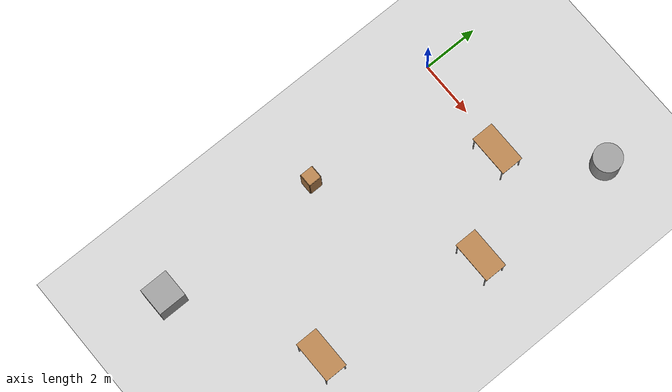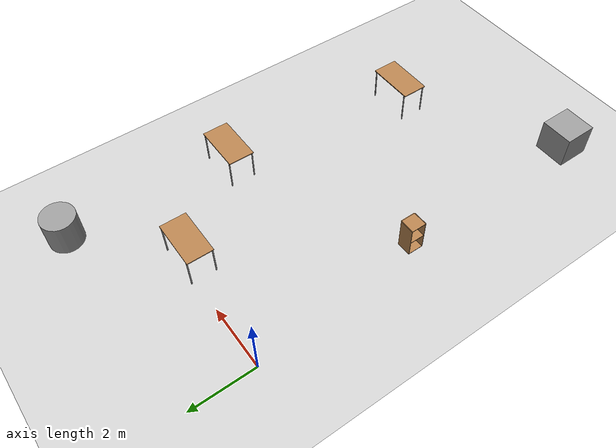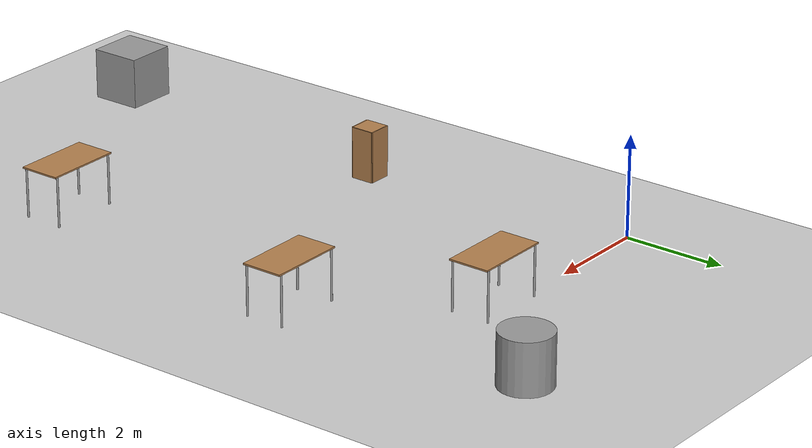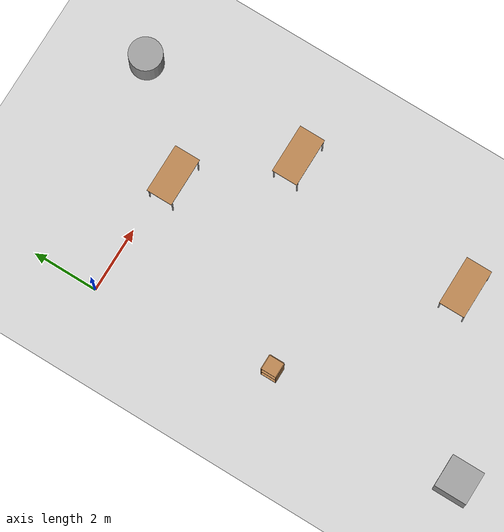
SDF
<sdf version="1.6">
 <world name="default">
  <physics name="default_physics" default="0" type="ode">
   <ode>
    <solver>
     <type>quick</type>
     <iters>100</iters>
     <sor>1</sor>
     <use_dynamic_moi_rescaling>0</use_dynamic_moi_rescaling>
    </solver>
    <constraints>
     <cfm>0</cfm>
     <erp>0.9</erp>
     <contact_max_correcting_vel>0.1</contact_max_correcting_vel>
     <contact_surface_layer>0</contact_surface_layer>
    </constraints>
   </ode>
   <real_time_update_rate>-1</real_time_update_rate>
   <max_step_size>0.001</max_step_size>
   <real_time_factor>1</real_time_factor>
  </physics>
  <light name="sun" type="directional">
   <pose>0 0 10 0 -0 0</pose>
   <diffuse>0.8 0.8 0.8 1</diffuse>
   <specular>0.2 0.2 0.2 1</specular>
   <attenuation>
    <range>1000</range>
    <constant>0.9</constant>
    <linear>0.01</linear>
    <quadratic>0.001</quadratic>
   </attenuation>
   <direction>-0.5 0.1 -0.9</direction>
  </light>
  <model name="ground_plane">
   <static>1</static>
   <link name="link">
    <collision name="collision">
     <geometry><plane><normal>0 0 1</normal><size>100 100</size></plane></geometry>
     <surface><friction><ode><mu>100</mu><mu2>50</mu2></ode></friction></surface>
    </collision>
    <visual name="visual">
     <cast_shadows>0</cast_shadows>
     <geometry><plane><normal>0 0 1</normal><size>100 100</size></plane></geometry>
     <material>
      <script><uri>file://media/materials/scripts/gazebo.material</uri><name>Gazebo/Grey</name></script>
     </material>
    </visual>
   </link>
  </model>
  <gravity>0 0 -9.8</gravity>
  <magnetic_field>6e-06 2.3e-05 -4.2e-05</magnetic_field>
  <atmosphere type="adiabatic"/>
  <scene><ambient>0.4 0.4 0.4 1</ambient><background>0.7 0.7 0.7 1</background><shadows>1</shadows></scene>
  <spherical_coordinates>
   <surface_model>EARTH_WGS84</surface_model>
   <latitude_deg>0</latitude_deg>
   <longitude_deg>0</longitude_deg>
   <elevation>0</elevation>
   <heading_deg>0</heading_deg>
  </spherical_coordinates>
  <model name="cabinet">
   <static>1</static>
   <link name="cabinet_bottom_plate">
    <inertial>
     <pose>0 0 -1 0 -0 0</pose>
     <inertia><ixx>2.05</ixx><ixy>0</ixy><ixz>0</ixz><iyy>2.05</iyy><iyz>0</iyz><izz>2.05</izz></inertia>
     <mass>25</mass>
    </inertial>
    <collision name="cabinet_bottom_plate_geom">
     <pose>0 0 0.01 0 -0 0</pose>
     <geometry><box><size>0.45 0.45 0.02</size></box></geometry>
    </collision>
    <visual name="cabinet_bottom_plate_geom_visual">
     <pose>0 0 0.01 0 -0 0</pose>
     <geometry><box><size>0.45 0.45 0.02</size></box></geometry>
     <material>
      <script><uri>file://media/materials/scripts/gazebo.material</uri><name>Gazebo/Wood</name></script>
     </material>
    </visual>
    <collision name="cabinet_bottom_plate_geom_cabinet_back_plate">
     <pose>0.235 0 0.51 0 -0 0</pose>
     <geometry><box><size>0.02 0.45 1.02</size></box></geometry>
    </collision>
    <visual name="cabinet_bottom_plate_geom_cabinet_back_plate_visual">
     <pose>0.235 0 0.51 0 -0 0</pose>
     <geometry><box><size>0.02 0.45 1.02</size></box></geometry>
     <material>
      <script><uri>file://media/materials/scripts/gazebo.material</uri><name>Gazebo/Wood</name></script>
     </material>
    </visual>
    <collision name="cabinet_bottom_plate_geom_cabinet_left_plate">
     <pose>0 0.235 0.51 0 -0 0</pose>
     <geometry><box><size>0.45 0.02 1.02</size></box></geometry>
    </collision>
    <visual name="cabinet_bottom_plate_geom_cabinet_left_plate_visual">
     <pose>0 0.235 0.51 0 -0 0</pose>
     <geometry><box><size>0.45 0.02 1.02</size></box></geometry>
     <material>
      <script><uri>file://media/materials/scripts/gazebo.material</uri><name>Gazebo/Wood</name></script>
     </material>
    </visual>
    <collision name="cabinet_bottom_plate_geom_cabinet_middle_plate">
     <pose>0 0 0.51 0 -0 0</pose>
     <geometry><box><size>0.45 0.45 0.02</size></box></geometry>
    </collision>
    <visual name="cabinet_bottom_plate_geom_cabinet_middle_plate_visual">
     <pose>0 0 0.51 0 -0 0</pose>
     <geometry><box><size>0.45 0.45 0.02</size></box></geometry>
     <material>
      <script><uri>file://media/materials/scripts/gazebo.material</uri><name>Gazebo/Wood</name></script>
     </material>
    </visual>
    <collision name="cabinet_bottom_plate_geom_cabinet_right_plate">
     <pose>0 -0.235 0.51 0 -0 0</pose>
     <geometry><box><size>0.45 0.02 1.02</size></box></geometry>
    </collision>
    <visual name="cabinet_bottom_plate_geom_cabinet_right_plate_visual">
     <pose>0 -0.235 0.51 0 -0 0</pose>
     <geometry><box><size>0.45 0.02 1.02</size></box></geometry>
     <material>
      <script><uri>file://media/materials/scripts/gazebo.material</uri><name>Gazebo/Wood</name></script>
     </material>
    </visual>
    <collision name="cabinet_bottom_plate_geom_cabinet_top_plate">
     <pose>0 0 1.01 0 -0 0</pose>
     <geometry><box><size>0.45 0.45 0.02</size></box></geometry>
    </collision>
    <visual name="cabinet_bottom_plate_geom_cabinet_top_plate_visual">
     <pose>0 0 1.01 0 -0 0</pose>
     <geometry><box><size>0.45 0.45 0.02</size></box></geometry>
     <material>
      <script><uri>file://media/materials/scripts/gazebo.material</uri><name>Gazebo/Wood</name></script>
     </material>
    </visual>
   </link>
   <pose>0.633046 -5.41109 0 0 -0 0</pose>
  </model>
  <model name="table">
   <static>1</static>
   <link name="link">
    <collision name="surface">
     <pose>0 0 1 0 -0 0</pose>
     <geometry><box><size>1.5 0.8 0.03</size></box></geometry>
     <surface><friction><ode><mu>0.6</mu><mu2>0.6</mu2></ode></friction></surface>
    </collision>
    <visual name="visual1">
     <pose>0 0 1 0 -0 0</pose>
     <geometry><box><size>1.5 0.8 0.03</size></box></geometry>
     <material>
      <script><uri>file://media/materials/scripts/gazebo.material</uri><name>Gazebo/Wood</name></script>
     </material>
    </visual>
    <collision name="front_left_leg">
     <pose>0.68 0.38 0.5 0 -0 0</pose>
     <geometry><cylinder><radius>0.02</radius><length>1</length></cylinder></geometry>
    </collision>
    <visual name="front_left_leg">
     <pose>0.68 0.38 0.5 0 -0 0</pose>
     <geometry><cylinder><radius>0.02</radius><length>1</length></cylinder></geometry>
     <material>
      <script><uri>file://media/materials/scripts/gazebo.material</uri><name>Gazebo/Grey</name></script>
     </material>
    </visual>
    <collision name="front_right_leg">
     <pose>0.68 -0.38 0.5 0 -0 0</pose>
     <geometry><cylinder><radius>0.02</radius><length>1</length></cylinder></geometry>
    </collision>
    <visual name="front_right_leg">
     <pose>0.68 -0.38 0.5 0 -0 0</pose>
     <geometry><cylinder><radius>0.02</radius><length>1</length></cylinder></geometry>
     <material>
      <script><uri>file://media/materials/scripts/gazebo.material</uri><name>Gazebo/Grey</name></script>
     </material>
    </visual>
    <collision name="back_right_leg">
     <pose>-0.68 -0.38 0.5 0 -0 0</pose>
     <geometry><cylinder><radius>0.02</radius><length>1</length></cylinder></geometry>
    </collision>
    <visual name="back_right_leg">
     <pose>-0.68 -0.38 0.5 0 -0 0</pose>
     <geometry><cylinder><radius>0.02</radius><length>1</length></cylinder></geometry>
     <material>
      <script><uri>file://media/materials/scripts/gazebo.material</uri><name>Gazebo/Grey</name></script>
     </material>
    </visual>
    <collision name="back_left_leg">
     <pose>-0.68 0.38 0.5 0 -0 0</pose>
     <geometry><cylinder><radius>0.02</radius><length>1</length></cylinder></geometry>
    </collision>
    <visual name="back_left_leg">
     <pose>-0.68 0.38 0.5 0 -0 0</pose>
     <geometry><cylinder><radius>0.02</radius><length>1</length></cylinder></geometry>
     <material>
      <script><uri>file://media/materials/scripts/gazebo.material</uri><name>Gazebo/Grey</name></script>
     </material>
    </visual>
   </link>
   <pose>3.75328 -0.25771 0 0 -0 0</pose>
  </model>
  <model name="unit_box">
   <pose>0.631179 -11.3574 0.6898 -0 -0 -0</pose>
   <link name="link">
    <inertial>
     <mass>1</mass>
     <inertia>
      <ixx>0.166667</ixx>
      <ixy>0</ixy>
      <ixz>0</ixz>
      <iyy>0.166667</iyy>
      <iyz>0</iyz>
      <izz>0.166667</izz>
     </inertia>
    </inertial>
    <collision name="collision"><geometry><box><size>1 1 1</size></box></geometry></collision>
    <visual name="visual">
     <geometry><box><size>1 1 1</size></box></geometry>
     <material>
      <script><name>Gazebo/Grey</name><uri>file://media/materials/scripts/gazebo.material</uri></script>
     </material>
    </visual>
   </link>
  </model>
  <model name="unit_cylinder">
   <pose>6.26153 2.21863 0.689794 1.1e-05 4e-06 -5.6e-05</pose>
   <link name="link">
    <inertial>
     <mass>1</mass>
     <inertia><ixx>0.145833</ixx><ixy>0</ixy><ixz>0</ixz><iyy>0.145833</iyy><iyz>0</iyz><izz>0.125</izz></inertia>
    </inertial>
    <collision name="collision">
     <geometry><cylinder><radius>0.5</radius><length>1</length></cylinder></geometry>
    </collision>
    <visual name="visual">
     <geometry><cylinder><radius>0.5</radius><length>1</length></cylinder></geometry>
     <material>
      <script><name>Gazebo/Grey</name><uri>file://media/materials/scripts/gazebo.material</uri></script>
     </material>
    </visual>
   </link>
  </model>
  <model name="table_0">
   <static>1</static>
   <link name="link">
    <collision name="surface">
     <pose>0 0 1 0 -0 0</pose>
     <geometry><box><size>1.5 0.8 0.03</size></box></geometry>
     <surface><friction><ode><mu>0.6</mu><mu2>0.6</mu2></ode></friction></surface>
    </collision>
    <visual name="visual1">
     <pose>0 0 1 0 -0 0</pose>
     <geometry><box><size>1.5 0.8 0.03</size></box></geometry>
     <material>
      <script><uri>file://media/materials/scripts/gazebo.material</uri><name>Gazebo/Wood</name></script>
     </material>
    </visual>
    <collision name="front_left_leg">
     <pose>0.68 0.38 0.5 0 -0 0</pose>
     <geometry><cylinder><radius>0.02</radius><length>1</length></cylinder></geometry>
    </collision>
    <visual name="front_left_leg">
     <pose>0.68 0.38 0.5 0 -0 0</pose>
     <geometry><cylinder><radius>0.02</radius><length>1</length></cylinder></geometry>
     <material>
      <script><uri>file://media/materials/scripts/gazebo.material</uri><name>Gazebo/Grey</name></script>
     </material>
    </visual>
    <collision name="front_right_leg">
     <pose>0.68 -0.38 0.5 0 -0 0</pose>
     <geometry><cylinder><radius>0.02</radius><length>1</length></cylinder></geometry>
    </collision>
    <visual name="front_right_leg">
     <pose>0.68 -0.38 0.5 0 -0 0</pose>
     <geometry><cylinder><radius>0.02</radius><length>1</length></cylinder></geometry>
     <material>
      <script><uri>file://media/materials/scripts/gazebo.material</uri><name>Gazebo/Grey</name></script>
     </material>
    </visual>
    <collision name="back_right_leg">
     <pose>-0.68 -0.38 0.5 0 -0 0</pose>
     <geometry><cylinder><radius>0.02</radius><length>1</length></cylinder></geometry>
    </collision>
    <visual name="back_right_leg">
     <pose>-0.68 -0.38 0.5 0 -0 0</pose>
     <geometry><cylinder><radius>0.02</radius><length>1</length></cylinder></geometry>
     <material>
      <script><uri>file://media/materials/scripts/gazebo.material</uri><name>Gazebo/Grey</name></script>
     </material>
    </visual>
    <collision name="back_left_leg">
     <pose>-0.68 0.38 0.5 0 -0 0</pose>
     <geometry><cylinder><radius>0.02</radius><length>1</length></cylinder></geometry>
    </collision>
    <visual name="back_left_leg">
     <pose>-0.68 0.38 0.5 0 -0 0</pose>
     <geometry><cylinder><radius>0.02</radius><length>1</length></cylinder></geometry>
     <material>
      <script><uri>file://media/materials/scripts/gazebo.material</uri><name>Gazebo/Grey</name></script>
     </material>
    </visual>
   </link>
   <pose>6.05511 -2.92283 0 0 -0 0</pose>
  </model>
  <model name="table_1">
   <static>1</static>
   <link name="link">
    <collision name="surface">
     <pose>0 0 1 0 -0 0</pose>
     <geometry><box><size>1.5 0.8 0.03</size></box></geometry>
     <surface><friction><ode><mu>0.6</mu><mu2>0.6</mu2></ode></friction></surface>
    </collision>
    <visual name="visual1">
     <pose>0 0 1 0 -0 0</pose>
     <geometry><box><size>1.5 0.8 0.03</size></box></geometry>
     <material>
      <script><uri>file://media/materials/scripts/gazebo.material</uri><name>Gazebo/Wood</name></script>
     </material>
    </visual>
    <collision name="front_left_leg">
     <pose>0.68 0.38 0.5 0 -0 0</pose>
     <geometry><cylinder><radius>0.02</radius><length>1</length></cylinder></geometry>
    </collision>
    <visual name="front_left_leg">
     <pose>0.68 0.38 0.5 0 -0 0</pose>
     <geometry><cylinder><radius>0.02</radius><length>1</length></cylinder></geometry>
     <material>
      <script><uri>file://media/materials/scripts/gazebo.material</uri><name>Gazebo/Grey</name></script>
     </material>
    </visual>
    <collision name="front_right_leg">
     <pose>0.68 -0.38 0.5 0 -0 0</pose>
     <geometry><cylinder><radius>0.02</radius><length>1</length></cylinder></geometry>
    </collision>
    <visual name="front_right_leg">
     <pose>0.68 -0.38 0.5 0 -0 0</pose>
     <geometry><cylinder><radius>0.02</radius><length>1</length></cylinder></geometry>
     <material>
      <script><uri>file://media/materials/scripts/gazebo.material</uri><name>Gazebo/Grey</name></script>
     </material>
    </visual>
    <collision name="back_right_leg">
     <pose>-0.68 -0.38 0.5 0 -0 0</pose>
     <geometry><cylinder><radius>0.02</radius><length>1</length></cylinder></geometry>
    </collision>
    <visual name="back_right_leg">
     <pose>-0.68 -0.38 0.5 0 -0 0</pose>
     <geometry><cylinder><radius>0.02</radius><length>1</length></cylinder></geometry>
     <material>
      <script><uri>file://media/materials/scripts/gazebo.material</uri><name>Gazebo/Grey</name></script>
     </material>
    </visual>
    <collision name="back_left_leg">
     <pose>-0.68 0.38 0.5 0 -0 0</pose>
     <geometry><cylinder><radius>0.02</radius><length>1</length></cylinder></geometry>
    </collision>
    <visual name="back_left_leg">
     <pose>-0.68 0.38 0.5 0 -0 0</pose>
     <geometry><cylinder><radius>0.02</radius><length>1</length></cylinder></geometry>
     <material>
      <script><uri>file://media/materials/scripts/gazebo.material</uri><name>Gazebo/Grey</name></script>
     </material>
    </visual>
   </link>
   <pose>5.29255 -8.78432 0 0 -0 0</pose>
  </model>
 </world>
</sdf>
